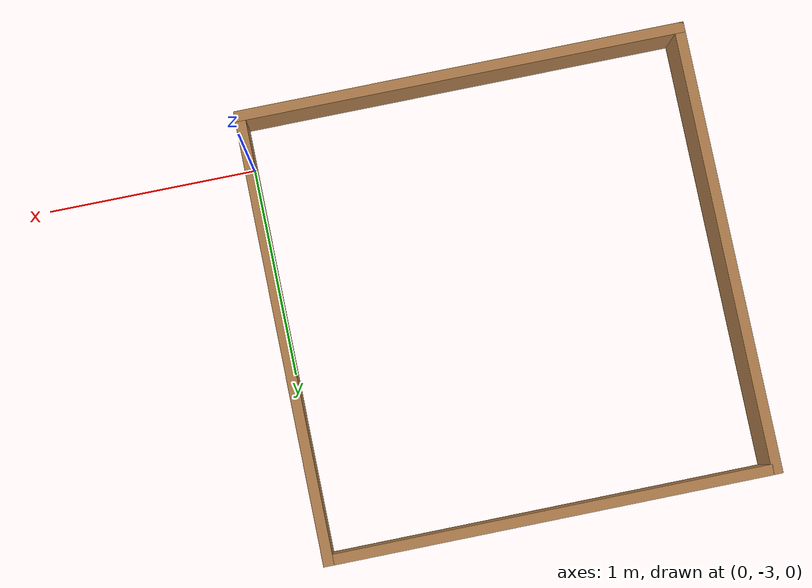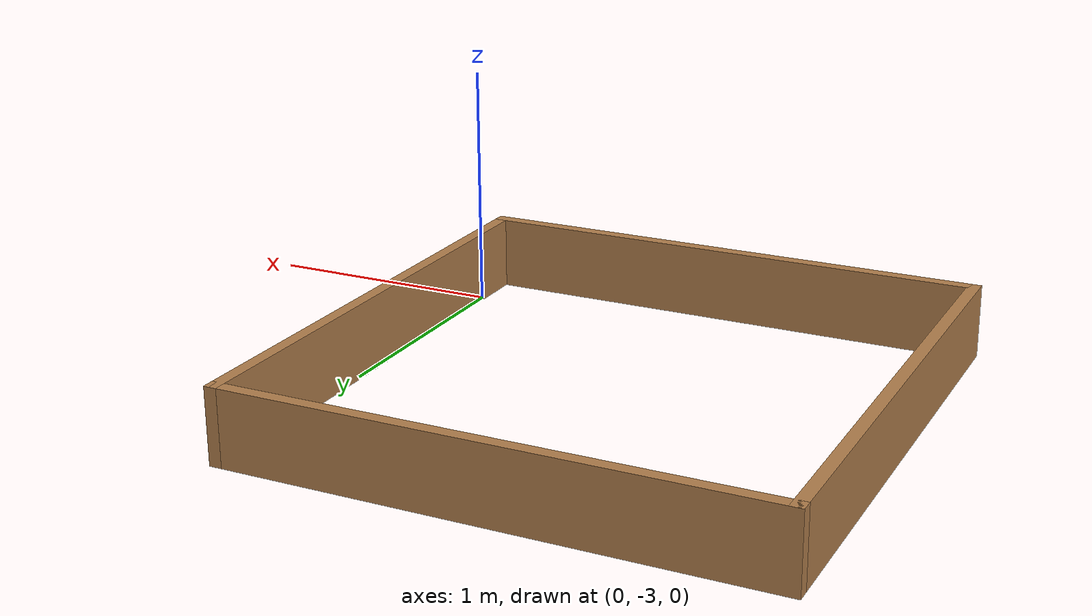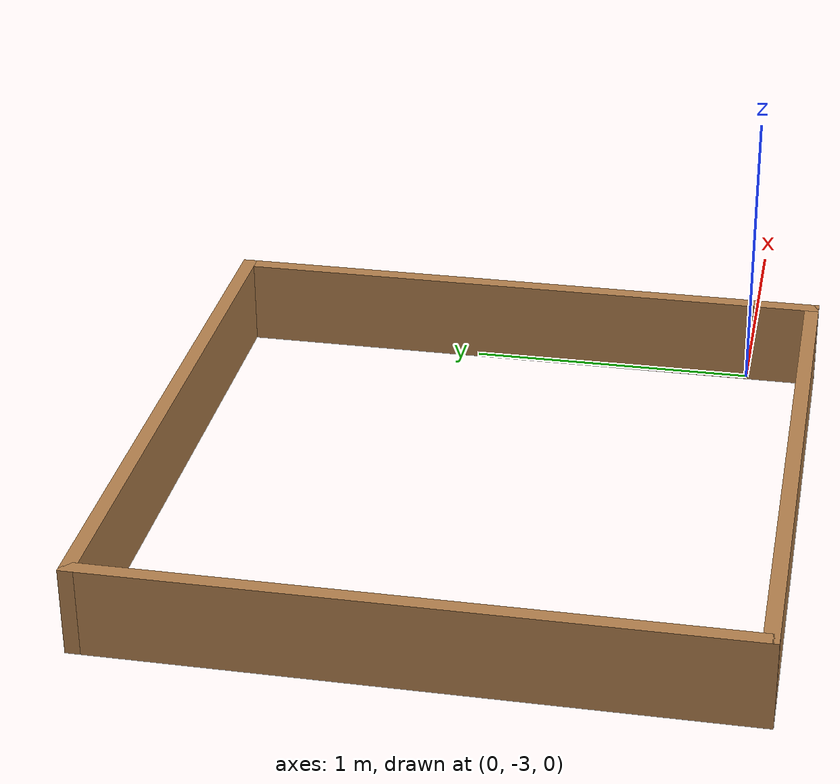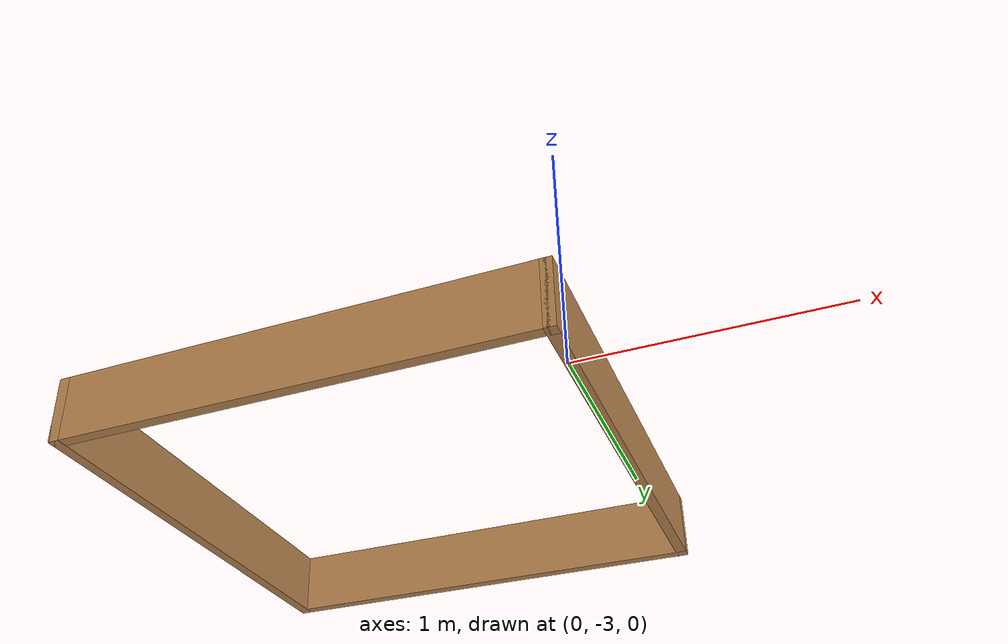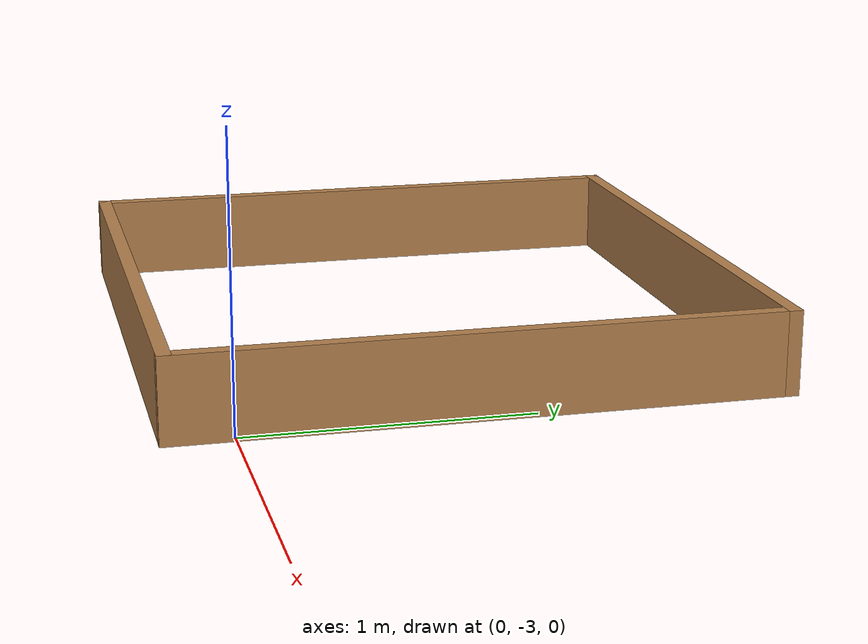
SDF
<?xml version='1.0'?>
<sdf version='1.6'>
  <model name='square1'>
    <pose frame=''>-1.04 -2.17 0 0 -0 0</pose>
    <link name='Wall_10'>
      <collision name='Wall_10_Collision'>
        <geometry>
          <box>
            <size>2.15 0.05 0.3</size>
          </box>
        </geometry>
        <pose frame=''>0 0 0.15 0 -0 0</pose>
      </collision>
      <visual name='Wall_10_Visual'>
        <pose frame=''>0 0 0.15 0 -0 0</pose>
        <geometry>
          <box>
            <size>2.15 0.05 0.3</size>
          </box>
        </geometry>
        <material>
          <script>
            <uri>file://media/materials/scripts/gazebo.material</uri>
            <name>Gazebo/Wood</name>
          </script>
          <ambient>1 1 1 1</ambient>
        </material>
        <meta>
          <layer>0</layer>
        </meta>
      </visual>
      <pose frame=''>-0 1.05 0 0 -0 3.14159</pose>
    </link>
    <link name='Wall_11'>
      <collision name='Wall_11_Collision'>
        <geometry>
          <box>
            <size>2.15 0.05 0.3</size>
          </box>
        </geometry>
        <pose frame=''>0 0 0.15 0 -0 0</pose>
      </collision>
      <visual name='Wall_11_Visual'>
        <pose frame=''>0 0 0.15 0 -0 0</pose>
        <geometry>
          <box>
            <size>2.15 0.05 0.3</size>
          </box>
        </geometry>
        <material>
          <script>
            <uri>file://media/materials/scripts/gazebo.material</uri>
            <name>Gazebo/Wood</name>
          </script>
          <ambient>1 1 1 1</ambient>
        </material>
        <meta>
          <layer>0</layer>
        </meta>
      </visual>
      <pose frame=''>-1.05 0 0 0 -0 -1.5708</pose>
    </link>
    <link name='Wall_12'>
      <collision name='Wall_12_Collision'>
        <geometry>
          <box>
            <size>2.15 0.05 0.3</size>
          </box>
        </geometry>
        <pose frame=''>0 0 0.15 0 -0 0</pose>
      </collision>
      <visual name='Wall_12_Visual'>
        <pose frame=''>0 0 0.15 0 -0 0</pose>
        <geometry>
          <box>
            <size>2.15 0.05 0.3</size>
          </box>
        </geometry>
        <material>
          <script>
            <uri>file://media/materials/scripts/gazebo.material</uri>
            <name>Gazebo/Wood</name>
          </script>
          <ambient>1 1 1 1</ambient>
        </material>
        <meta>
          <layer>0</layer>
        </meta>
      </visual>
      <pose frame=''>-0 -1.05 0 0 -0 0</pose>
    </link>
    <link name='Wall_13'>
      <collision name='Wall_13_Collision'>
        <geometry>
          <box>
            <size>2.15 0.05 0.3</size>
          </box>
        </geometry>
        <pose frame=''>0 0 0.15 0 -0 0</pose>
      </collision>
      <visual name='Wall_13_Visual'>
        <pose frame=''>0 0 0.15 0 -0 0</pose>
        <geometry>
          <box>
            <size>2.15 0.05 0.3</size>
          </box>
        </geometry>
        <material>
          <script>
            <uri>file://media/materials/scripts/gazebo.material</uri>
            <name>Gazebo/Wood</name>
          </script>
          <ambient>1 1 1 1</ambient>
        </material>
        <meta>
          <layer>0</layer>
        </meta>
      </visual>
      <pose frame=''>1.05 0 0 0 -0 1.5708</pose>
    </link>
    <static>1</static>
  </model>
</sdf>
